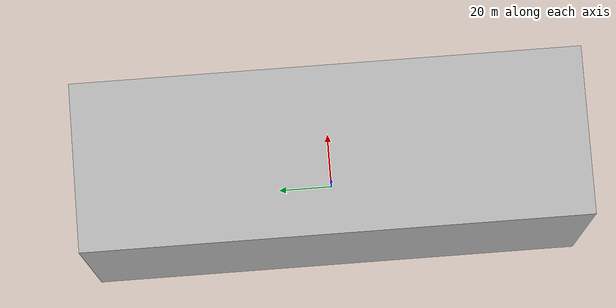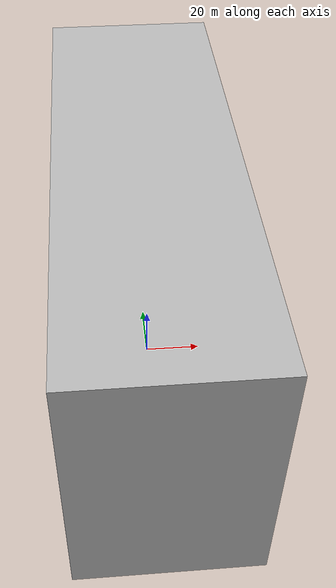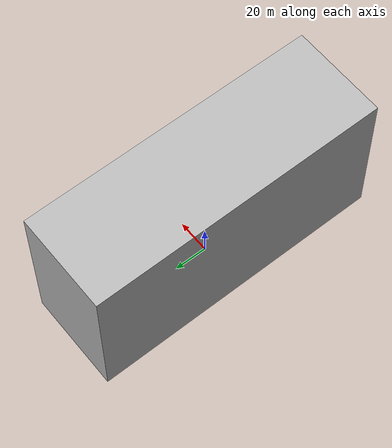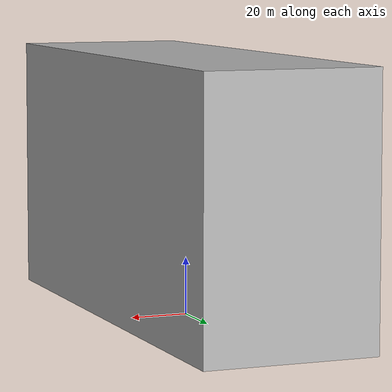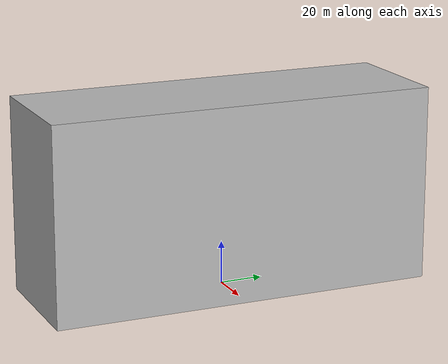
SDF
<?xml version="1.0" ?>
<sdf version="1.6">
  <model name="rwc2024/kitchen_counter">
    <static>true</static>
    <link name="1_link">
      <collision name="1_col">
        <geometry>
          <box>
            <size>59.5 179.5 90.8</size>
          </box>
        </geometry>
      </collision>
      <visual name="1_vis">
        <geometry>
          <box>
            <size>59.5 179.5 90.8</size>
          </box>
        </geometry>
      </visual>
      <pose>0.0 0.0 45.4 0 0 0</pose>
    </link>
    <link name="on_top_of">
      <virtual_volume name="on_top_of_vv">
        <geometry>
          <box>
            <size>59.48 179.44 0.25</size>
          </box>
        </geometry>
        <pose>0.0 0.0 90.945 0 0 0</pose>
      </virtual_volume>
    </link>
    <link name="in_front_of">
      <virtual_volume name="in_front_of_vv">
        <geometry>
          <box>
            <size>0.2 179.3 0.01</size>
          </box>
        </geometry>
        <pose>30.25 0.0 0.005 0 0 0</pose>
      </virtual_volume>
    </link>
  </model>
</sdf>
